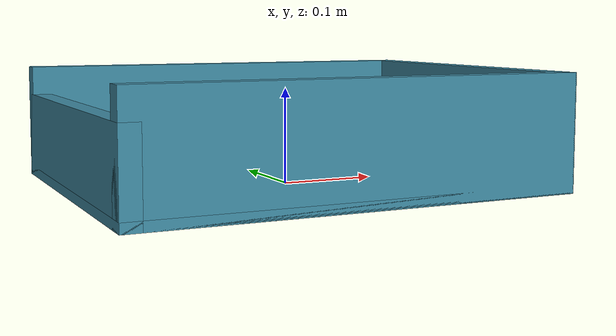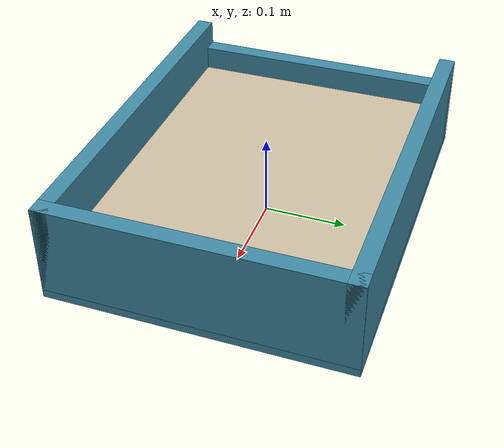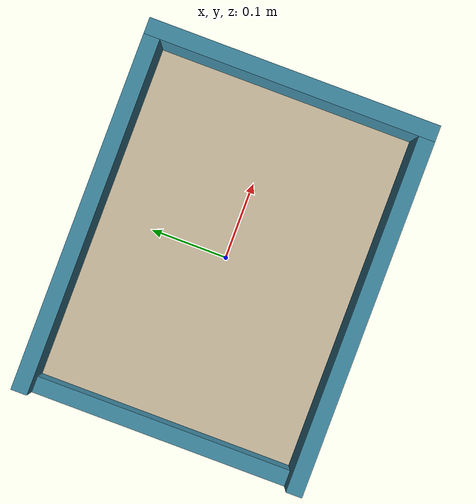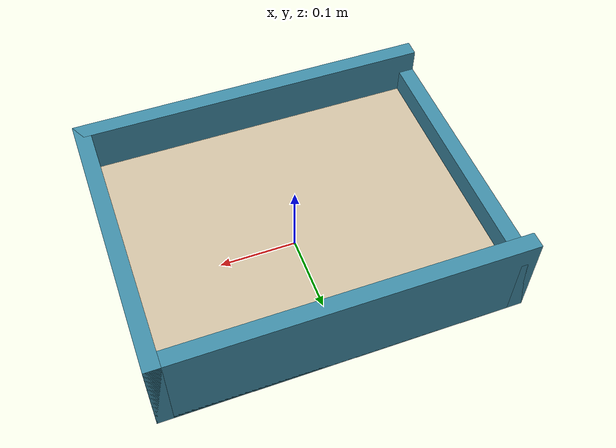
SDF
<?xml version="1.0"?>
<sdf version="1.8">
  <!-- 0.46 x 0.36 m tray, the cat gets in from the -x side -->
  <model name="litter_box">
    <static>true</static>
    <link name="link">
      <collision name="tray">
        <pose>0 0 0.06 0 0 0</pose>
        <geometry><box><size>0.46 0.36 0.12</size></box></geometry>
      </collision>
      <visual name="bottom">
        <pose>0 0 0.005 0 0 0</pose>
        <geometry><box><size>0.46 0.36 0.01</size></box></geometry>
        <material><ambient>0.20 0.45 0.55 1</ambient><diffuse>0.25 0.55 0.65 1</diffuse><specular>0.2 0.2 0.2 1</specular></material>
      </visual>
      <visual name="wall_front">
        <pose>-0.22 0 0.045 0 0 0</pose>
        <geometry><box><size>0.02 0.36 0.09</size></box></geometry>
        <material><ambient>0.20 0.45 0.55 1</ambient><diffuse>0.25 0.55 0.65 1</diffuse><specular>0.2 0.2 0.2 1</specular></material>
      </visual>
      <visual name="wall_back">
        <pose>0.22 0 0.06 0 0 0</pose>
        <geometry><box><size>0.02 0.36 0.12</size></box></geometry>
        <material><ambient>0.20 0.45 0.55 1</ambient><diffuse>0.25 0.55 0.65 1</diffuse><specular>0.2 0.2 0.2 1</specular></material>
      </visual>
      <visual name="wall_left">
        <pose>0 0.17 0.06 0 0 0</pose>
        <geometry><box><size>0.46 0.02 0.12</size></box></geometry>
        <material><ambient>0.20 0.45 0.55 1</ambient><diffuse>0.25 0.55 0.65 1</diffuse><specular>0.2 0.2 0.2 1</specular></material>
      </visual>
      <visual name="wall_right">
        <pose>0 -0.17 0.06 0 0 0</pose>
        <geometry><box><size>0.46 0.02 0.12</size></box></geometry>
        <material><ambient>0.20 0.45 0.55 1</ambient><diffuse>0.25 0.55 0.65 1</diffuse><specular>0.2 0.2 0.2 1</specular></material>
      </visual>
      <visual name="sand">
        <pose>0 0 0.035 0 0 0</pose>
        <geometry><box><size>0.42 0.32 0.05</size></box></geometry>
        <material><ambient>0.70 0.65 0.55 1</ambient><diffuse>0.81 0.75 0.64 1</diffuse><specular>0 0 0 1</specular></material>
      </visual>
    </link>
  </model>
</sdf>
